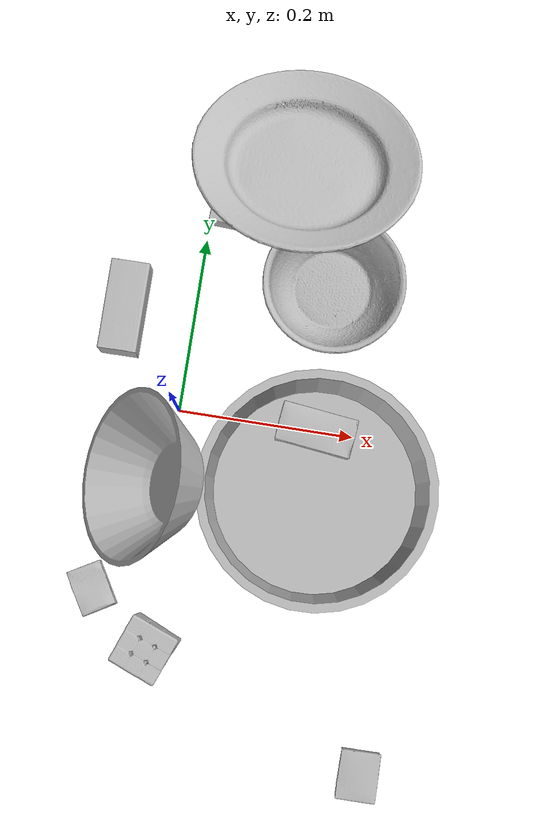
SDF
<sdf version="1.4">
  <world name="default">
    <light name="light1" type="point">
      <pose>0 0 1 0 0 0</pose>
      <diffuse>3 3 3 1</diffuse>
      <specular>3 3 3 1</specular>
    </light>
    <light name="light2" type="point">
      <pose>0 0.5 2 0 0 0</pose>
      <diffuse>1 1 1 1</diffuse>
      <specular>1 1 1 1</specular>
    </light>
    <light name="light3" type="point">
      <pose>0 0.5 2 0 0 0</pose>
      <diffuse>3 3 3 1</diffuse>
      <specular>3 3 3 1</specular>
    </light>
    <scene>
      <ambient>0.7 0.7 0.7</ambient>
    </scene>
    <model name="box1">
      <link name="link_box1">
        <collision name="default">
          <geometry>
            <mesh>
              <uri>model://cracker_box/collision_meshes/collision.obj</uri>
              <scale>0.25 0.25 0.25</scale>
            </mesh>
          </geometry>
          <surface>
            <friction>
              <ode>
                <mu>0.5</mu>
                <mu2>0.5</mu2>
              </ode>
            </friction>
          <contact>
        <ode>
            <max_vel>0</max_vel>
            <min_depth>0.0001</min_depth>
            <kp>1e8</kp>
        </ode>
    </contact></surface>
        </collision>
        <visual name="default">
          <geometry>
            <mesh>
              <uri>model://cracker_box/visual_meshes/visual.dae</uri>
              <scale>0.25 0.25 0.25</scale>
            </mesh>
          </geometry>
        </visual>
        <inertial>
          <mass>0.050503700971603394</mass>
          <pose>0.0002366037224419415 6.358561950037256e-05 -0.0004257383698131889 -0.00031620760376762643 -0.011106489600284392 0.0025467959332018085</pose>
          <inertia>
            <ixx>8.02868e-06</ixx>
            <iyy>1.3256925e-05</iyy>
            <izz>1.8918852e-05</izz>
            <ixy>0</ixy>
            <ixz>0</ixz>
            <iyz>0</iyz>
          </inertia>
        </inertial>
      </link>
      <pose>-0.0647525042295456 -0.21403871476650238 0.009096025489270687 -0.014050419540970895 -0.005016606604668317 -1.0423631771633637</pose>
    </model>
    <model name="box11">
      <link name="link_box11">
        <collision name="default">
          <geometry>
            <mesh>
              <uri>model://rubiks_cube/collision_meshes/collision.obj</uri>
              <scale>1.0 1.0 1.0</scale>
            </mesh>
          </geometry>
          <surface>
            <friction>
              <ode>
                <mu>0.5</mu>
                <mu2>0.5</mu2>
              </ode>
            </friction>
          <contact>
        <ode>
            <max_vel>0</max_vel>
            <min_depth>0.0001</min_depth>
            <kp>1e8</kp>
        </ode>
    </contact></surface>
        </collision>
        <visual name="default">
          <geometry>
            <mesh>
              <uri>model://rubiks_cube/visual_meshes/visual.dae</uri>
              <scale>1.0 1.0 1.0</scale>
            </mesh>
          </geometry>
        </visual>
        <inertial>
          <mass>0.15071694552898407</mass>
          <pose>2.6721043468569405e-05 5.2569666877388954e-05 -7.264316082000732e-06 -0.05467297119259296 -0.09814009057422186 -0.034453654418704155</pose>
          <inertia>
            <ixx>8.328124e-05</ixx>
            <iyy>8.2892846e-05</iyy>
            <izz>8.397135e-05</izz>
            <ixy>0</ixy>
            <ixz>0</ixz>
            <iyz>0</iyz>
          </inertia>
        </inertial>
      </link>
      <pose>0.006526960525661707 -0.26934176683425903 0.028678931295871735 -4.875233291527968e-06 -1.8359958172007534e-06 1.1909480925906901</pose>
    </model>
    <model name="box2">
      <link name="link_box2">
        <collision name="default">
          <geometry>
            <mesh>
              <uri>model://gelatin_box/collision_meshes/collision.obj</uri>
              <scale>1.0 1.0 1.0</scale>
            </mesh>
          </geometry>
          <surface>
            <friction>
              <ode>
                <mu>0.5</mu>
                <mu2>0.5</mu2>
              </ode>
            </friction>
          <contact>
        <ode>
            <max_vel>0</max_vel>
            <min_depth>0.0001</min_depth>
            <kp>1e8</kp>
        </ode>
    </contact></surface>
        </collision>
        <visual name="default">
          <geometry>
            <mesh>
              <uri>model://gelatin_box/visual_meshes/visual.dae</uri>
              <scale>1.0 1.0 1.0</scale>
            </mesh>
          </geometry>
        </visual>
        <inertial>
          <mass>0.24173277616500854</mass>
          <pose>0.00043196187471039593 0.00011156872642459348 -0.0003640321083366871 -0.001050371835386973 -0.004755817297158009 0.016440553881960234</pose>
          <inertia>
            <ixx>0.00017064363</ixx>
            <iyy>0.00012188985</iyy>
            <izz>0.00025975762</izz>
            <ixy>0</ixy>
            <ixz>0</ixz>
            <iyz>0</iyz>
          </inertia>
        </inertial>
      </link>
      <pose>0.03761370852589607 0.2599441409111023 0.015168307349085808 0.005593397933553232 -0.00729831227920139 3.075428967732011</pose>
    </model>
    <model name="box21">
      <link name="link_box21">
        <collision name="default">
          <geometry>
            <mesh>
              <uri>model://wood_block/collision_meshes/collision.obj</uri>
              <scale>0.5 0.5 0.5</scale>
            </mesh>
          </geometry>
          <surface>
            <friction>
              <ode>
                <mu>0.5</mu>
                <mu2>0.5</mu2>
              </ode>
            </friction>
          <contact>
        <ode>
            <max_vel>0</max_vel>
            <min_depth>0.0001</min_depth>
            <kp>1e8</kp>
        </ode>
    </contact></surface>
        </collision>
        <visual name="default">
          <geometry>
            <mesh>
              <uri>model://wood_block/visual_meshes/visual.dae</uri>
              <scale>0.5 0.5 0.5</scale>
            </mesh>
          </geometry>
        </visual>
        <inertial>
          <mass>0.16252566874027252</mass>
          <pose>-2.906657982748584e-06 -0.000285404734313488 0.00013204291462898254 -0.05220975528683206 -0.005192696037335319 -0.006861378846526553</pose>
          <inertia>
            <ixx>5.437098e-05</ixx>
            <iyy>0.00017175796</iyy>
            <izz>0.00017111548</izz>
            <ixy>0</ixy>
            <ixz>0</ixz>
            <iyz>0</iyz>
          </inertia>
        </inertial>
      </link>
      <pose>-0.07842234522104263 0.10404042899608612 0.022629264742136 -0.005208647774679595 0.005718773352907799 1.5743813144155334</pose>
    </model>
    <model name="box3">
      <link name="link_box3">
        <collision name="default">
          <geometry>
            <mesh>
              <uri>model://pudding_box/collision_meshes/collision.obj</uri>
              <scale>0.5 0.5 0.5</scale>
            </mesh>
          </geometry>
          <surface>
            <friction>
              <ode>
                <mu>0.5</mu>
                <mu2>0.5</mu2>
              </ode>
            </friction>
          <contact>
        <ode>
            <max_vel>0</max_vel>
            <min_depth>0.0001</min_depth>
            <kp>1e8</kp>
        </ode>
    </contact></surface>
        </collision>
        <visual name="default">
          <geometry>
            <mesh>
              <uri>model://pudding_box/visual_meshes/visual.dae</uri>
              <scale>0.5 0.5 0.5</scale>
            </mesh>
          </geometry>
        </visual>
        <inertial>
          <mass>0.05576644837856293</mass>
          <pose>0.00024474109522998333 0.0004033942532259971 -0.0002594413817860186 0.005213101792545572 -0.006603798718575614 0.020079825159656634</pose>
          <inertia>
            <ixx>1.5760277e-05</ixx>
            <iyy>1.0603625e-05</iyy>
            <izz>2.3274164e-05</izz>
            <ixy>0</ixy>
            <ixz>0</ixz>
            <iyz>0</iyz>
          </inertia>
        </inertial>
      </link>
      <pose>0.2615625262260437 -0.37205490469932556 0.009862905368208885 0.02234953331154821 -0.01139117379065971 0.008764379932409186</pose>
    </model>
    <model name="box31">
      <link name="link_box31">
        <collision name="default">
          <geometry>
            <mesh>
              <uri>model://sugar_box/collision_meshes/collision.obj</uri>
              <scale>0.5 0.5 0.5</scale>
            </mesh>
          </geometry>
          <surface>
            <friction>
              <ode>
                <mu>0.5</mu>
                <mu2>0.5</mu2>
              </ode>
            </friction>
          <contact>
        <ode>
            <max_vel>0</max_vel>
            <min_depth>0.0001</min_depth>
            <kp>1e8</kp>
        </ode>
    </contact></surface>
        </collision>
        <visual name="default">
          <geometry>
            <mesh>
              <uri>model://sugar_box/visual_meshes/visual.dae</uri>
              <scale>0.5 0.5 0.5</scale>
            </mesh>
          </geometry>
        </visual>
        <inertial>
          <mass>0.1100529357790947</mass>
          <pose>0.0005171863595023751 1.924554817378521e-05 -0.00018182402709499002 -0.00040462641680988955 0.001050663522315131 0.0026153787888612426</pose>
          <inertia>
            <ixx>2.2923945e-05</ixx>
            <iyy>7.409492e-05</iyy>
            <izz>8.870046e-05</izz>
            <ixy>0</ixy>
            <ixz>0</ixz>
            <iyz>0</iyz>
          </inertia>
        </inertial>
      </link>
      <pose>0.1576007753610611 0.0008365793619304895 0.01898711733520031 -0.00510309324659057 -0.03089174069721396 3.0275842626029874</pose>
    </model>
    <model name="plate1">
      <link name="link_plate1">
        <collision name="default">
          <geometry>
            <mesh>
              <uri>model://pan_tefal/collision_meshes/collision.obj</uri>
              <scale>1.0 1.0 1.0</scale>
            </mesh>
          </geometry>
          <surface>
            <friction>
              <ode>
                <mu>0.5</mu>
                <mu2>0.5</mu2>
              </ode>
            </friction>
          <contact>
        <ode>
            <max_vel>0</max_vel>
            <min_depth>0.0001</min_depth>
            <kp>1e8</kp>
        </ode>
    </contact></surface>
        </collision>
        <visual name="default">
          <geometry>
            <mesh>
              <uri>model://pan_tefal/visual_meshes/visual.dae</uri>
              <scale>1.0 1.0 1.0</scale>
            </mesh>
          </geometry>
        </visual>
        <inertial>
          <mass>1.207520604133606</mass>
          <pose>-0.00018002177239395678 3.2792409911053255e-05 -0.00851493701338768 0.0008190288495961148 -0.0003301407263612178 -0.3318541272495768</pose>
          <inertia>
            <ixx>0.008335457</ixx>
            <iyy>0.008389196</iyy>
            <izz>0.015343971</izz>
            <ixy>0</ixy>
            <ixz>0</ixz>
            <iyz>0</iyz>
          </inertia>
        </inertial>
      </link>
      <pose>0.16629169881343842 -0.06852566450834274 0.03805001080036163 -7.096248211181649e-08 -1.665038310887541e-07 1.699325606922802</pose>
    </model>
    <model name="bowl1">
      <link name="link_bowl1">
        <collision name="default">
          <geometry>
            <mesh>
              <uri>model://bowl/collision_meshes/collision.obj</uri>
              <scale>1.0 1.0 1.0</scale>
            </mesh>
          </geometry>
          <surface>
            <friction>
              <ode>
                <mu>0.5</mu>
                <mu2>0.5</mu2>
              </ode>
            </friction>
          <contact>
        <ode>
            <max_vel>0</max_vel>
            <min_depth>0.0001</min_depth>
            <kp>1e8</kp>
        </ode>
    </contact></surface>
        </collision>
        <visual name="default">
          <geometry>
            <mesh>
              <uri>model://bowl/visual_meshes/visual.dae</uri>
              <scale>1.0 1.0 1.0</scale>
            </mesh>
          </geometry>
        </visual>
        <inertial>
          <mass>0.09256309270858765</mass>
          <pose>0.00020445158588699996 -0.001030202372930944 -0.0008042642730288208 -0.015764073075752352 0.01454679669645375 0.7140412125775129</pose>
          <inertia>
            <ixx>0.00021262471</ixx>
            <iyy>0.00020787389</iyy>
            <izz>0.00035770793</izz>
            <ixy>0</ixy>
            <ixz>0</ixz>
            <iyz>0</iyz>
          </inertia>
        </inertial>
      </link>
      <pose>0.15108433365821838 0.16513003408908844 0.02780008874833584 -0.0002793296353307519 0.0004452646552806436 1.2344767803185586</pose>
    </model>
    <model name="plate2">
      <link name="link_plate2">
        <collision name="default">
          <geometry>
            <mesh>
              <uri>model://plate/collision_meshes/collision.obj</uri>
              <scale>1.0 1.0 1.0</scale>
            </mesh>
          </geometry>
          <surface>
            <friction>
              <ode>
                <mu>0.5</mu>
                <mu2>0.5</mu2>
              </ode>
            </friction>
          <contact>
        <ode>
            <max_vel>0</max_vel>
            <min_depth>0.0001</min_depth>
            <kp>1e8</kp>
        </ode>
    </contact></surface>
        </collision>
        <visual name="default">
          <geometry>
            <mesh>
              <uri>model://plate/visual_meshes/visual.dae</uri>
              <scale>1.0 1.0 1.0</scale>
            </mesh>
          </geometry>
        </visual>
        <inertial>
          <mass>0.22150008380413055</mass>
          <pose>-0.0006044640904292464 0.0002782581141218543 -0.0010561984963715076 0.0022187839711676756 -0.00322547471274247 0.4526095389577293</pose>
          <inertia>
            <ixx>0.0010361817</ixx>
            <iyy>0.0010262709</iyy>
            <izz>0.0020266173</izz>
            <ixy>0</ixy>
            <ixz>0</ixz>
            <iyz>0</iyz>
          </inertia>
        </inertial>
      </link>
      <pose>0.09934798628091812 0.29580748081207275 0.045558009296655655 -0.41015297956156205 -0.09181038861741496 -0.20516790644561336</pose>
    </model>
    <model name="bowl2">
      <link name="link_bowl2">
        <collision name="default">
          <geometry>
            <mesh>
              <uri>model://bowl_a/collision_meshes/collision.obj</uri>
              <scale>1.0 1.0 1.0</scale>
            </mesh>
          </geometry>
          <surface>
            <friction>
              <ode>
                <mu>0.5</mu>
                <mu2>0.5</mu2>
              </ode>
            </friction>
          <contact>
        <ode>
            <max_vel>0</max_vel>
            <min_depth>0.0001</min_depth>
            <kp>1e8</kp>
        </ode>
    </contact></surface>
        </collision>
        <visual name="default">
          <geometry>
            <mesh>
              <uri>model://bowl_a/visual_meshes/visual.dae</uri>
              <scale>1.0 1.0 1.0</scale>
            </mesh>
          </geometry>
        </visual>
        <inertial>
          <mass>0.4869906008243561</mass>
          <pose>0.0002786735713016242 4.731232547783293e-05 -0.001376529224216938 -0.0009805388639875933 -0.0010938169956893674 -0.19123322132810686</pose>
          <inertia>
            <ixx>0.0013864844</ixx>
            <iyy>0.0013949967</iyy>
            <izz>0.0024659163</izz>
            <ixy>0</ixy>
            <ixz>0</ixz>
            <iyz>0</iyz>
          </inertia>
        </inertial>
      </link>
      <pose>-0.013083437457680702 -0.0848744735121727 0.06319231539964676 0.20458414515847542 0.9054201458727249 -2.8590903955377818</pose>
    </model>
  <physics type="ode">
      <max_contacts>50</max_contacts>
      <ode>
        <solver>
          <type>quick</type>
          <iters>75</iters>
        </solver>
        <constraints>
          <contact_max_correcting_vel>0</contact_max_correcting_vel>
          <contact_surface_layer>0</contact_surface_layer>
        </constraints>
      </ode>
    </physics></world>
</sdf>
